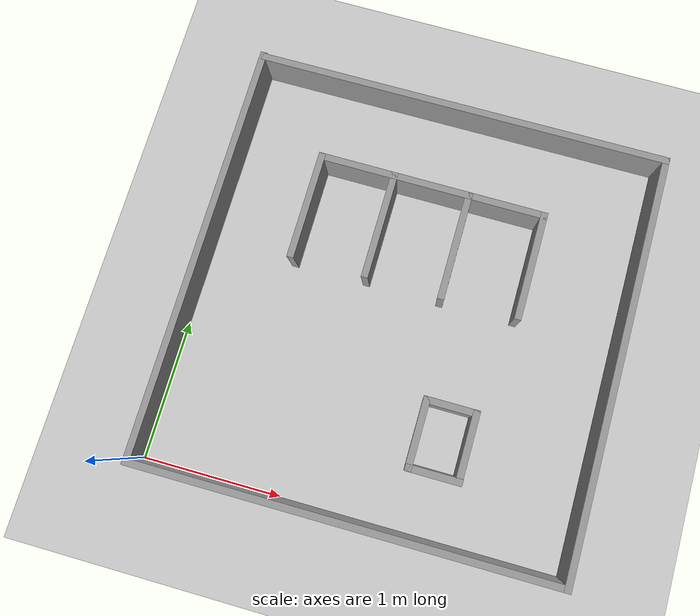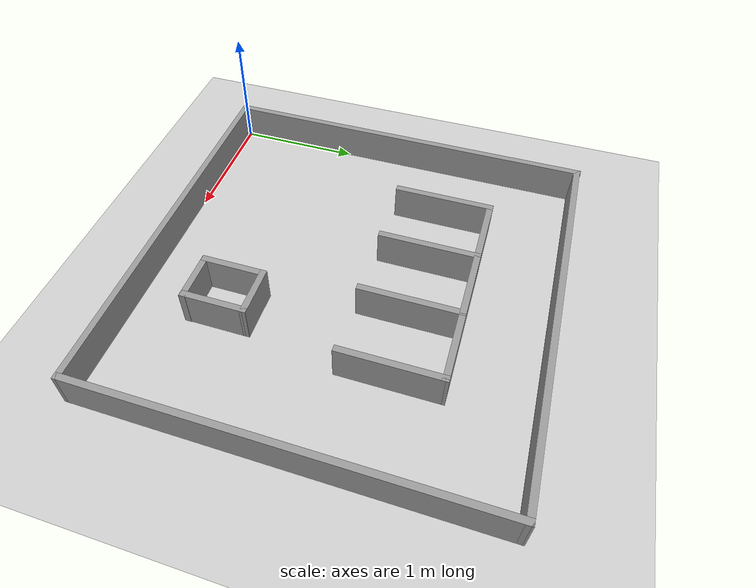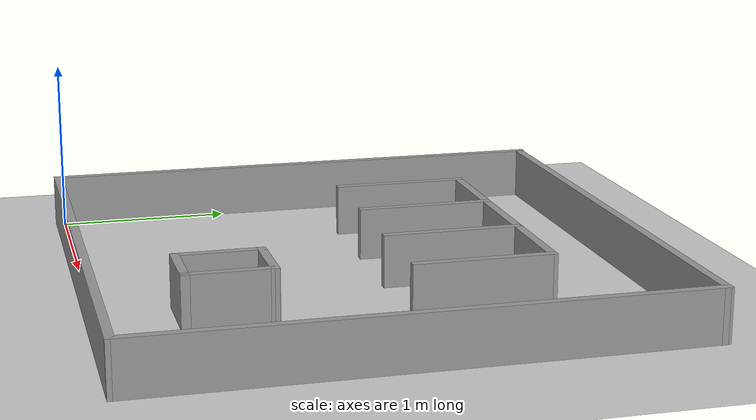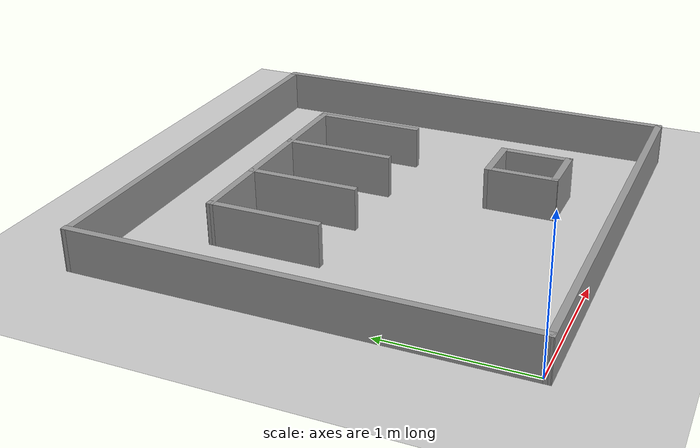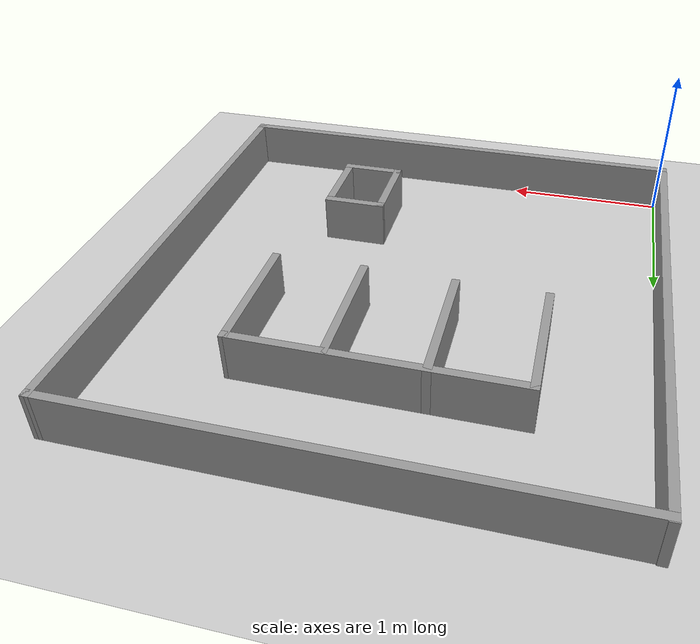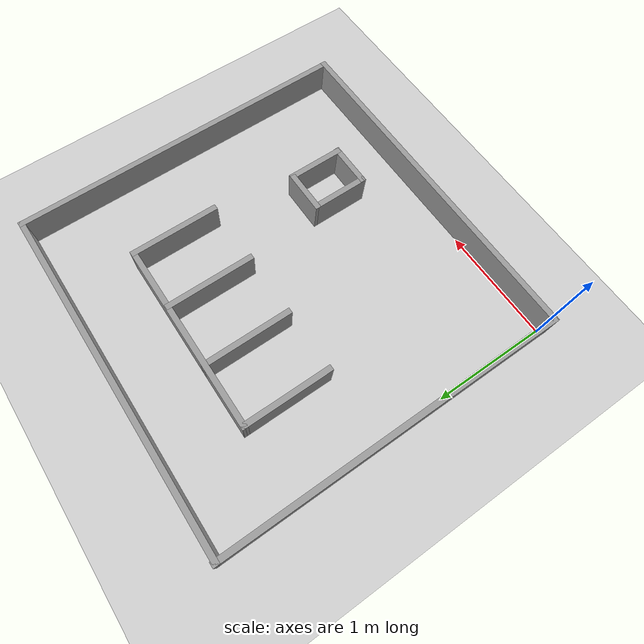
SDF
<?xml version="1.0" ?>
<sdf version="1.4">
  <world name="default">
    <include>
      <uri>model://ground_plane</uri>
    </include>
    <include>
      <uri>model://sun</uri>
    </include>
    <include>
      <uri>model://robohouse</uri>
      <name>robohouse</name>
      <pose>1.5 1.5 0 0 0 0</pose>
    </include>
  </world>
</sdf>

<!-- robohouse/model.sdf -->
<sdf version='1.7'>
  <model name='robohouse'>
    <pose>0.0125 -0.006264 0 0 -0 0</pose>
    <link name='Wall_10'>
      <collision name='Wall_10_Collision'>
        <geometry>
          <box>
            <size>3.1 0.05 0.3</size>
          </box>
        </geometry>
        <pose>0 0 0.15 0 -0 0</pose>
      </collision>
      <visual name='Wall_10_Visual'>
        <pose>0 0 0.15 0 -0 0</pose>
        <geometry>
          <box>
            <size>3.1 0.05 0.3</size>
          </box>
        </geometry>
        <material>
          <script>
            <uri>file://media/materials/scripts/gazebo.material</uri>
            <name>Gazebo/Grey</name>
          </script>
          <ambient>0 0 0 1</ambient>
        </material>
        <meta>
          <layer>0</layer>
        </meta>
      </visual>
      <pose>-1.52171 0.003304 0 0 -0 -1.57086</pose>
    </link>
    <link name='Wall_20'>
      <collision name='Wall_20_Collision'>
        <geometry>
          <box>
            <size>0.8 0.05 0.3</size>
          </box>
        </geometry>
        <pose>0 0 0.15 0 -0 0</pose>
      </collision>
      <visual name='Wall_20_Visual'>
        <pose>0 0 0.15 0 -0 0</pose>
        <geometry>
          <box>
            <size>0.8 0.05 0.3</size>
          </box>
        </geometry>
        <material>
          <script>
            <uri>file://media/materials/scripts/gazebo.material</uri>
            <name>Gazebo/Grey</name>
          </script>
          <ambient>0 0 0 1</ambient>
        </material>
        <meta>
          <layer>0</layer>
        </meta>
      </visual>
      <pose>-0.878019 0.514583 0 0 -0 1.5708</pose>
    </link>
    <link name='Wall_21'>
      <collision name='Wall_21_Collision'>
        <geometry>
          <box>
            <size>1.70051 0.05 0.3</size>
          </box>
        </geometry>
        <pose>0 0 0.15 0 -0 0</pose>
      </collision>
      <visual name='Wall_21_Visual'>
        <pose>0 0 0.15 0 -0 0</pose>
        <geometry>
          <box>
            <size>1.70051 0.05 0.3</size>
          </box>
        </geometry>
        <material>
          <script>
            <uri>file://media/materials/scripts/gazebo.material</uri>
            <name>Gazebo/Grey</name>
          </script>
          <ambient>0 0 0 1</ambient>
        </material>
        <meta>
          <layer>0</layer>
        </meta>
      </visual>
      <pose>-0.052765 0.889843 0 0 -0 -0.001951</pose>
    </link>
    <link name='Wall_22'>
      <collision name='Wall_22_Collision'>
        <geometry>
          <box>
            <size>0.8 0.05 0.3</size>
          </box>
        </geometry>
        <pose>0 0 0.15 0 -0 0</pose>
      </collision>
      <visual name='Wall_22_Visual'>
        <pose>0 0 0.15 0 -0 0</pose>
        <geometry>
          <box>
            <size>0.8 0.05 0.3</size>
          </box>
        </geometry>
        <material>
          <script>
            <uri>file://media/materials/scripts/gazebo.material</uri>
            <name>Gazebo/Grey</name>
          </script>
          <ambient>0 0 0 1</ambient>
        </material>
        <meta>
          <layer>0</layer>
        </meta>
      </visual>
      <pose>0.772488 0.513233 0 0 -0 -1.5708</pose>
    </link>
    <link name='Wall_24'>
      <collision name='Wall_24_Collision'>
        <geometry>
          <box>
            <size>0.8 0.05 0.3</size>
          </box>
        </geometry>
        <pose>0 0 0.15 0 -0 0</pose>
      </collision>
      <visual name='Wall_24_Visual'>
        <pose>0 0 0.15 0 -0 0</pose>
        <geometry>
          <box>
            <size>0.8 0.05 0.3</size>
          </box>
        </geometry>
        <material>
          <script>
            <uri>file://media/materials/scripts/gazebo.material</uri>
            <name>Gazebo/Grey</name>
          </script>
          <ambient>0 0 0 1</ambient>
        </material>
        <meta>
          <layer>0</layer>
        </meta>
      </visual>
      <pose>-0.33435 0.515512 0 0 -0 -1.5708</pose>
    </link>
    <link name='Wall_26'>
      <collision name='Wall_26_Collision'>
        <geometry>
          <box>
            <size>0.8 0.05 0.3</size>
          </box>
        </geometry>
        <pose>0 0 0.15 0 -0 0</pose>
      </collision>
      <visual name='Wall_26_Visual'>
        <pose>0 0 0.15 0 -0 0</pose>
        <geometry>
          <box>
            <size>0.8 0.05 0.3</size>
          </box>
        </geometry>
        <material>
          <script>
            <uri>file://media/materials/scripts/gazebo.material</uri>
            <name>Gazebo/Grey</name>
          </script>
          <ambient>0 0 0 1</ambient>
        </material>
        <meta>
          <layer>0</layer>
        </meta>
      </visual>
      <pose>0.220199 0.508008 0 0 -0 -1.5708</pose>
    </link>
    <link name='Wall_28'>
      <collision name='Wall_28_Collision'>
        <geometry>
          <box>
            <size>0.4 0.05 0.3</size>
          </box>
        </geometry>
        <pose>0 0 0.15 0 -0 0</pose>
      </collision>
      <visual name='Wall_28_Visual'>
        <pose>0 0 0.15 0 -0 0</pose>
        <geometry>
          <box>
            <size>0.4 0.05 0.3</size>
          </box>
        </geometry>
        <material>
          <script>
            <uri>file://media/materials/scripts/gazebo.material</uri>
            <name>Gazebo/Grey</name>
          </script>
          <ambient>0 0 0 1</ambient>
        </material>
        <meta>
          <layer>0</layer>
        </meta>
      </visual>
      <pose>0.490231 -1.05754 0 0 -0 0</pose>
    </link>
    <link name='Wall_29'>
      <collision name='Wall_29_Collision'>
        <geometry>
          <box>
            <size>0.51289 0.05 0.3</size>
          </box>
        </geometry>
        <pose>0 0 0.15 0 -0 0</pose>
      </collision>
      <visual name='Wall_29_Visual'>
        <pose>0 0 0.15 0 -0 0</pose>
        <geometry>
          <box>
            <size>0.51289 0.05 0.3</size>
          </box>
        </geometry>
        <material>
          <script>
            <uri>file://media/materials/scripts/gazebo.material</uri>
            <name>Gazebo/Grey</name>
          </script>
          <ambient>0 0 0 1</ambient>
        </material>
        <meta>
          <layer>0</layer>
        </meta>
      </visual>
      <pose>0.662036 -0.822829 0 0 -0 1.57047</pose>
    </link>
    <link name='Wall_30'>
      <collision name='Wall_30_Collision'>
        <geometry>
          <box>
            <size>0.4 0.05 0.3</size>
          </box>
        </geometry>
        <pose>0 0 0.15 0 -0 0</pose>
      </collision>
      <visual name='Wall_30_Visual'>
        <pose>0 0 0.15 0 -0 0</pose>
        <geometry>
          <box>
            <size>0.4 0.05 0.3</size>
          </box>
        </geometry>
        <material>
          <script>
            <uri>file://media/materials/scripts/gazebo.material</uri>
            <name>Gazebo/Grey</name>
          </script>
          <ambient>0 0 0 1</ambient>
        </material>
        <meta>
          <layer>0</layer>
        </meta>
      </visual>
      <pose>0.487111 -0.588115 0 0 -0 3.14159</pose>
    </link>
    <link name='Wall_31'>
      <collision name='Wall_31_Collision'>
        <geometry>
          <box>
            <size>0.51289 0.05 0.3</size>
          </box>
        </geometry>
        <pose>0 0 0.15 0 -0 0</pose>
      </collision>
      <visual name='Wall_31_Visual'>
        <pose>0 0 0.15 0 -0 0</pose>
        <geometry>
          <box>
            <size>0.51289 0.05 0.3</size>
          </box>
        </geometry>
        <material>
          <script>
            <uri>file://media/materials/scripts/gazebo.material</uri>
            <name>Gazebo/Grey</name>
          </script>
          <ambient>0 0 0 1</ambient>
        </material>
        <meta>
          <layer>0</layer>
        </meta>
      </visual>
      <pose>0.312036 -0.822829 0 0 -0 -1.57112</pose>
    </link>
    <link name='Wall_6'>
      <collision name='Wall_6_Collision'>
        <geometry>
          <box>
            <size>3.09344 0.05 0.3</size>
          </box>
        </geometry>
        <pose>0 0 0.15 0 -0 0</pose>
      </collision>
      <visual name='Wall_6_Visual'>
        <pose>0 0 0.15 0 -0 0</pose>
        <geometry>
          <box>
            <size>3.09344 0.05 0.3</size>
          </box>
        </geometry>
        <material>
          <script>
            <uri>file://media/materials/scripts/gazebo.material</uri>
            <name>Gazebo/Grey</name>
          </script>
          <ambient>0 0 0 1</ambient>
        </material>
        <meta>
          <layer>0</layer>
        </meta>
      </visual>
      <pose>-9.2e-05 -1.52622 0 0 -0 0.001345</pose>
    </link>
    <link name='Wall_7'>
      <collision name='Wall_7_Collision'>
        <geometry>
          <box>
            <size>3.1 0.05 0.3</size>
          </box>
        </geometry>
        <pose>0 0 0.15 0 -0 0</pose>
      </collision>
      <visual name='Wall_7_Visual'>
        <pose>0 0 0.15 0 -0 0</pose>
        <geometry>
          <box>
            <size>3.1 0.05 0.3</size>
          </box>
        </geometry>
        <material>
          <script>
            <uri>file://media/materials/scripts/gazebo.material</uri>
            <name>Gazebo/Grey</name>
          </script>
          <ambient>0 0 0 1</ambient>
        </material>
        <meta>
          <layer>0</layer>
        </meta>
      </visual>
      <pose>1.52171 0.000822 0 0 -0 1.57074</pose>
    </link>
    <link name='Wall_8'>
      <collision name='Wall_8_Collision'>
        <geometry>
          <box>
            <size>3.09343 0.05 0.3</size>
          </box>
        </geometry>
        <pose>0 0 0.15 0 -0 0</pose>
      </collision>
      <visual name='Wall_8_Visual'>
        <pose>0 0 0.15 0 -0 0</pose>
        <geometry>
          <box>
            <size>3.09343 0.05 0.3</size>
          </box>
        </geometry>
        <material>
          <script>
            <uri>file://media/materials/scripts/gazebo.material</uri>
            <name>Gazebo/Grey</name>
          </script>
          <ambient>0 0 0 1</ambient>
        </material>
        <meta>
          <layer>0</layer>
        </meta>
      </visual>
      <pose>9.6e-05 1.52378 0 0 -0 -3.14025</pose>
    </link>
    <static>1</static>
  </model>
</sdf>
